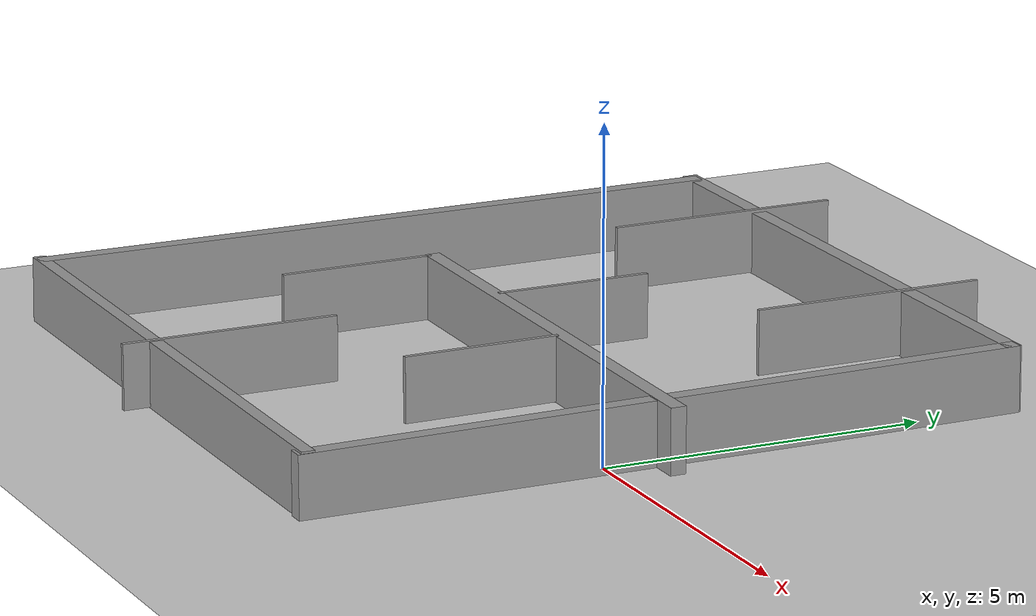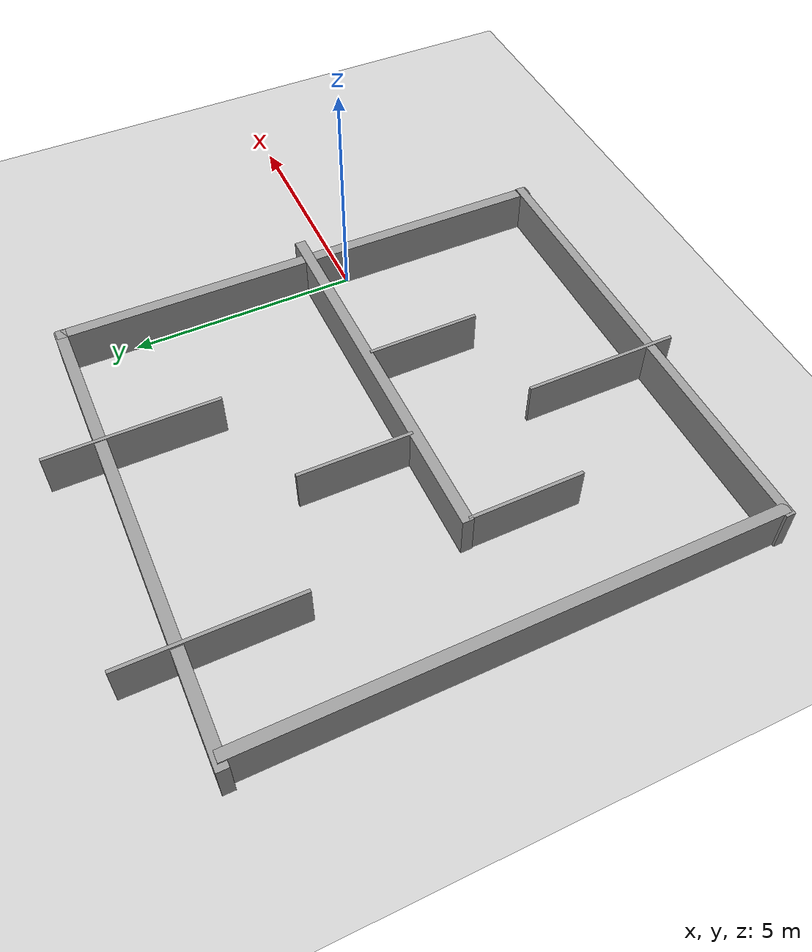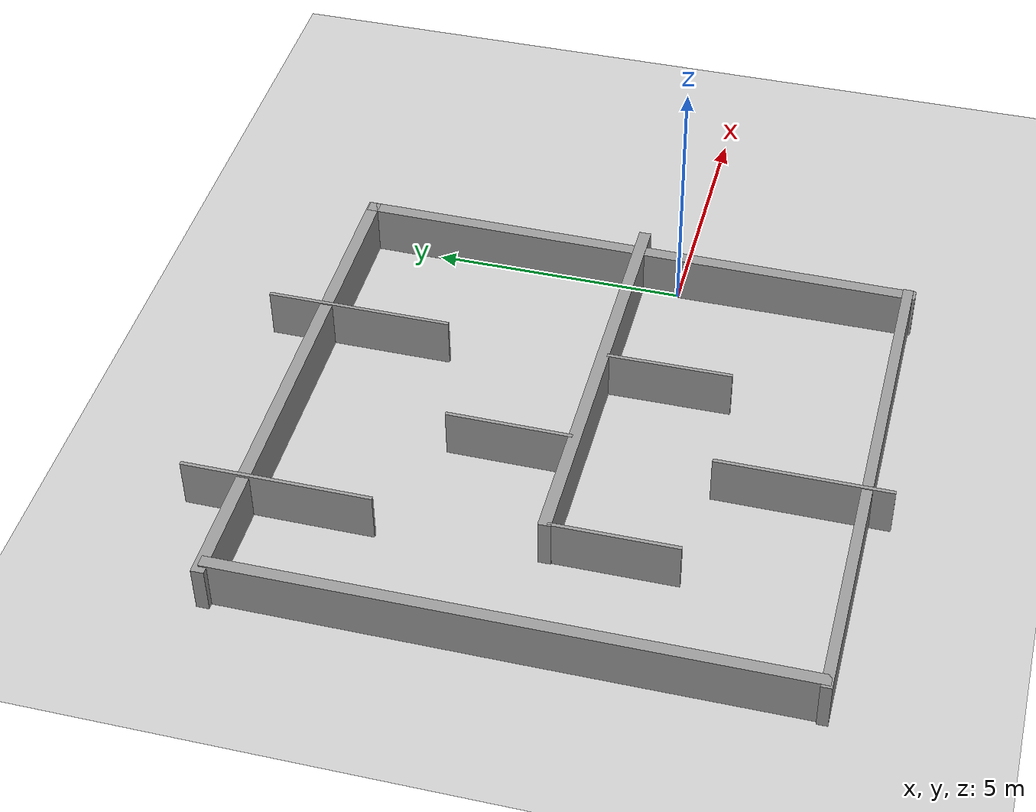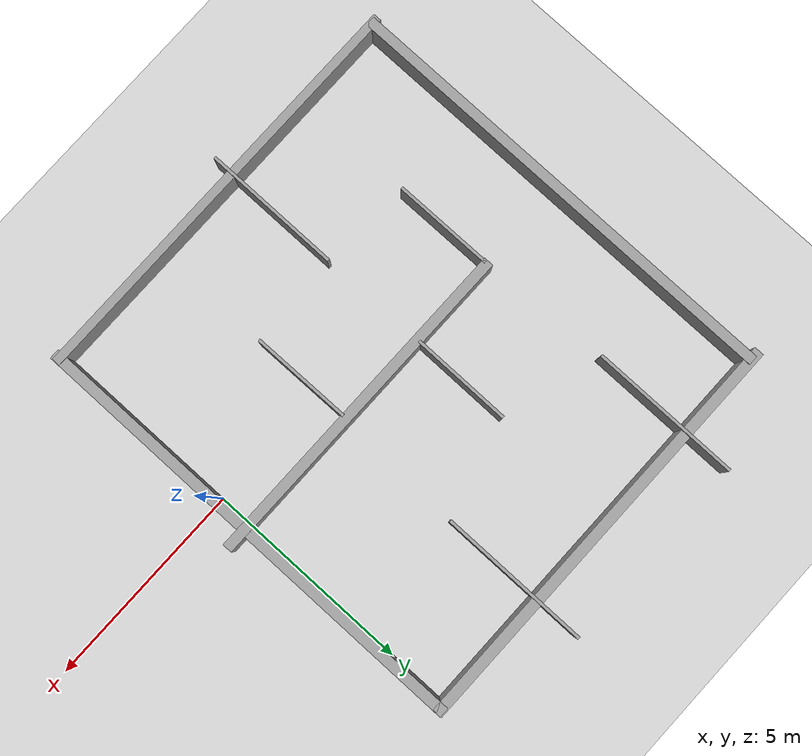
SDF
<sdf version="1.7">
 <world name="default">
  <light name="sun" type="directional">
   <pose>0 0 10 0 -0 0</pose>
   <diffuse>0.8 0.8 0.8 1</diffuse>
   <specular>0.2 0.2 0.2 1</specular>
   <attenuation>
    <range>1000</range>
    <constant>0.9</constant>
    <linear>0.01</linear>
    <quadratic>0.001</quadratic>
   </attenuation>
   <direction>-0.5 0.1 -0.9</direction>
   <spot><inner_angle>0</inner_angle><outer_angle>0</outer_angle><falloff>0</falloff></spot>
  </light>
  <model name="ground_plane">
   <static>1</static>
   <link name="link">
    <collision name="collision">
     <geometry><plane><normal>0 0 1</normal><size>100 100</size></plane></geometry>
     <surface><friction><ode><mu>100</mu><mu2>50</mu2></ode></friction></surface>
    </collision>
    <visual name="visual">
     <cast_shadows>0</cast_shadows>
     <geometry><plane><normal>0 0 1</normal><size>100 100</size></plane></geometry>
     <material>
      <script><uri>file://media/materials/scripts/gazebo.material</uri><name>Gazebo/Grey</name></script>
     </material>
    </visual>
   </link>
  </model>
  <gravity>0 0 -9.8</gravity>
  <magnetic_field>6e-06 2.3e-05 -4.2e-05</magnetic_field>
  <atmosphere type="adiabatic"/>
  <physics type="ode">
   <max_step_size>0.001</max_step_size>
   <real_time_factor>1</real_time_factor>
   <real_time_update_rate>1000</real_time_update_rate>
  </physics>
  <scene><ambient>0.4 0.4 0.4 1</ambient><background>0.7 0.7 0.7 1</background><shadows>1</shadows></scene>
  <audio><device>default</device></audio>
  <spherical_coordinates>
   <surface_model>EARTH_WGS84</surface_model>
   <latitude_deg>0</latitude_deg>
   <longitude_deg>0</longitude_deg>
   <elevation>0</elevation>
   <heading_deg>0</heading_deg>
  </spherical_coordinates>
  <model name="unit_box_0">
   <static>true</static>
   <pose>0.100119 0.917805 0.466702 0.006154 -0.00373 6.4e-05</pose>
   <link name="link">
    <inertial>
     <mass>1</mass>
     <inertia>
      <ixx>0.166667</ixx>
      <ixy>0</ixy>
      <ixz>0</ixz>
      <iyy>0.166667</iyy>
      <iyz>0</iyz>
      <izz>0.166667</izz>
     </inertia>
    </inertial>
    <collision name="collision"><geometry><box><size>0.247132 11.2633 1</size></box></geometry></collision>
    <visual name="visual">
     <geometry><box><size>0.247132 11.2633 1</size></box></geometry>
     <material>
      <script><name>Gazebo/Grey</name><uri>file://media/materials/scripts/gazebo.material</uri></script>
     </material>
    </visual>
   </link>
  </model>
  <model name="unit_box_1">
   <static>true</static>
   <pose>-3.50269 0.855399 0.490117 -0.001044 0.002384 -0.000488</pose>
   <link name="link">
    <inertial>
     <mass>1</mass>
     <inertia>
      <ixx>0.166667</ixx>
      <ixy>0</ixy>
      <ixz>0</ixz>
      <iyy>0.166667</iyy>
      <iyz>0</iyz>
      <izz>0.166667</izz>
     </inertia>
    </inertial>
    <collision name="collision"><geometry><box><size>8.29357 0.24095 1</size></box></geometry></collision>
    <visual name="visual">
     <geometry><box><size>8.29357 0.24095 1</size></box></geometry>
     <material>
      <script><name>Gazebo/Grey</name><uri>file://media/materials/scripts/gazebo.material</uri></script>
     </material>
    </visual>
   </link>
  </model>
  <model name="unit_box_0_clone">
   <static>true</static>
   <pose>-9.86597 0.928987 0.481256 -0.003482 0.005978 -1.2e-05</pose>
   <link name="link">
    <inertial>
     <mass>1</mass>
     <inertia>
      <ixx>0.166667</ixx>
      <ixy>0</ixy>
      <ixz>0</ixz>
      <iyy>0.166667</iyy>
      <iyz>0</iyz>
      <izz>0.166667</izz>
     </inertia>
    </inertial>
    <collision name="collision"><geometry><box><size>0.236188 11.1128 1</size></box></geometry></collision>
    <visual name="visual">
     <geometry><box><size>0.236188 11.1128 1</size></box></geometry>
     <material>
      <script><name>Gazebo/Grey</name><uri>file://media/materials/scripts/gazebo.material</uri></script>
     </material>
    </visual>
   </link>
  </model>
  <model name="unit_box_2">
   <static>true</static>
   <pose>-4.91425 -4.56243 0.482629 -0.006494 0.003525 -0.000389</pose>
   <link name="link">
    <inertial>
     <mass>1</mass>
     <inertia>
      <ixx>0.166667</ixx>
      <ixy>0</ixy>
      <ixz>0</ixz>
      <iyy>0.166667</iyy>
      <iyz>0</iyz>
      <izz>0.166667</izz>
     </inertia>
    </inertial>
    <collision name="collision"><geometry><box><size>10.2453 0.204934 1</size></box></geometry></collision>
    <visual name="visual">
     <geometry><box><size>10.2453 0.204934 1</size></box></geometry>
     <material>
      <script><name>Gazebo/Grey</name><uri>file://media/materials/scripts/gazebo.material</uri></script>
     </material>
    </visual>
   </link>
  </model>
  <model name="unit_box_2_clone">
   <static>true</static>
   <pose>-4.94947 6.45032 0.469294 0.000828 -0.006162 0.000289</pose>
   <link name="link">
    <inertial>
     <mass>1</mass>
     <inertia>
      <ixx>0.166667</ixx>
      <ixy>0</ixy>
      <ixz>0</ixz>
      <iyy>0.166667</iyy>
      <iyz>0</iyz>
      <izz>0.166667</izz>
     </inertia>
    </inertial>
    <collision name="collision"><geometry><box><size>10.3194 0.245709 1</size></box></geometry></collision>
    <visual name="visual">
     <geometry><box><size>10.3194 0.245709 1</size></box></geometry>
     <material>
      <script><name>Gazebo/Grey</name><uri>file://media/materials/scripts/gazebo.material</uri></script>
     </material>
    </visual>
   </link>
  </model>
  <model name="unit_box_3">
   <static>true</static>
   <pose>-3.08084 -0.439371 0.499946 -4.4e-05 1e-06 0.00682</pose>
   <link name="link">
    <inertial>
     <mass>1</mass>
     <inertia>
      <ixx>0.166667</ixx>
      <ixy>0</ixy>
      <ixz>0</ixz>
      <iyy>0.166667</iyy>
      <iyz>0</iyz>
      <izz>0.166667</izz>
     </inertia>
    </inertial>
    <collision name="collision"><geometry><box><size>0.072598 2.43571 1</size></box></geometry></collision>
    <visual name="visual">
     <geometry><box><size>0.072598 2.43571 1</size></box></geometry>
     <material>
      <script><name>Gazebo/Grey</name><uri>file://media/materials/scripts/gazebo.material</uri></script>
     </material>
    </visual>
   </link>
  </model>
  <model name="unit_box_3_clone">
   <static>true</static>
   <pose>-5.35128 -3.39657 0.499935 4.4e-05 1e-06 -0.001492</pose>
   <link name="link">
    <inertial>
     <mass>1</mass>
     <inertia>
      <ixx>0.166667</ixx>
      <ixy>0</ixy>
      <ixz>0</ixz>
      <iyy>0.166667</iyy>
      <iyz>0</iyz>
      <izz>0.166667</izz>
     </inertia>
    </inertial>
    <collision name="collision"><geometry><box><size>0.072598 3.35456 1</size></box></geometry></collision>
    <visual name="visual">
     <geometry><box><size>0.072598 3.35456 1</size></box></geometry>
     <material>
      <script><name>Gazebo/Grey</name><uri>file://media/materials/scripts/gazebo.material</uri></script>
     </material>
    </visual>
   </link>
  </model>
  <model name="unit_box_3_clone_clone">
   <static>true</static>
   <pose>-7.58863 -0.401974 0.499993 -7e-06 -1.9e-05 0.003519</pose>
   <link name="link">
    <inertial>
     <mass>1</mass>
     <inertia>
      <ixx>0.166667</ixx>
      <ixy>0</ixy>
      <ixz>0</ixz>
      <iyy>0.166667</iyy>
      <iyz>0</iyz>
      <izz>0.166667</izz>
     </inertia>
    </inertial>
    <collision name="collision"><geometry><box><size>0.072598 2.43571 1</size></box></geometry></collision>
    <visual name="visual">
     <geometry><box><size>0.072598 2.43571 1</size></box></geometry>
     <material>
      <script><name>Gazebo/Grey</name><uri>file://media/materials/scripts/gazebo.material</uri></script>
     </material>
    </visual>
   </link>
  </model>
  <model name="unit_box_3_clone_clone_1">
   <static>true</static>
   <pose>-5.35796 2.11695 0.499946 -4.4e-05 -1e-06 -0.004222</pose>
   <link name="link">
    <inertial>
     <mass>1</mass>
     <inertia>
      <ixx>0.166667</ixx>
      <ixy>0</ixy>
      <ixz>0</ixz>
      <iyy>0.166667</iyy>
      <iyz>0</iyz>
      <izz>0.166667</izz>
     </inertia>
    </inertial>
    <collision name="collision"><geometry><box><size>0.072598 2.43571 1</size></box></geometry></collision>
    <visual name="visual">
     <geometry><box><size>0.072598 2.43571 1</size></box></geometry>
     <material>
      <script><name>Gazebo/Grey</name><uri>file://media/materials/scripts/gazebo.material</uri></script>
     </material>
    </visual>
   </link>
  </model>
  <model name="unit_box_3_clone_clone_2">
   <static>true</static>
   <pose>-2.96137 5.79332 0.499918 -4.4e-05 -1e-06 -0.001447</pose>
   <link name="link">
    <inertial>
     <mass>1</mass>
     <inertia>
      <ixx>0.166667</ixx>
      <ixy>0</ixy>
      <ixz>0</ixz>
      <iyy>0.166667</iyy>
      <iyz>0</iyz>
      <izz>0.166667</izz>
     </inertia>
    </inertial>
    <collision name="collision"><geometry><box><size>0.072598 3.6523 1</size></box></geometry></collision>
    <visual name="visual">
     <geometry><box><size>0.072598 3.6523 1</size></box></geometry>
     <material>
      <script><name>Gazebo/Grey</name><uri>file://media/materials/scripts/gazebo.material</uri></script>
     </material>
    </visual>
   </link>
  </model>
  <model name="unit_box_3_clone_clone_2_clone">
   <static>true</static>
   <pose>-7.75234 5.8295 0.499918 -4.4e-05 -1e-06 -0.001447</pose>
   <link name="link">
    <inertial>
     <mass>1</mass>
     <inertia>
      <ixx>0.166667</ixx>
      <ixy>0</ixy>
      <ixz>0</ixz>
      <iyy>0.166667</iyy>
      <iyz>0</iyz>
      <izz>0.166667</izz>
     </inertia>
    </inertial>
    <collision name="collision"><geometry><box><size>0.072598 3.65231 1</size></box></geometry></collision>
    <visual name="visual">
     <geometry><box><size>0.072598 3.65231 1</size></box></geometry>
     <material>
      <script><name>Gazebo/Grey</name><uri>file://media/materials/scripts/gazebo.material</uri></script>
     </material>
    </visual>
   </link>
  </model>
 </world>
</sdf>
